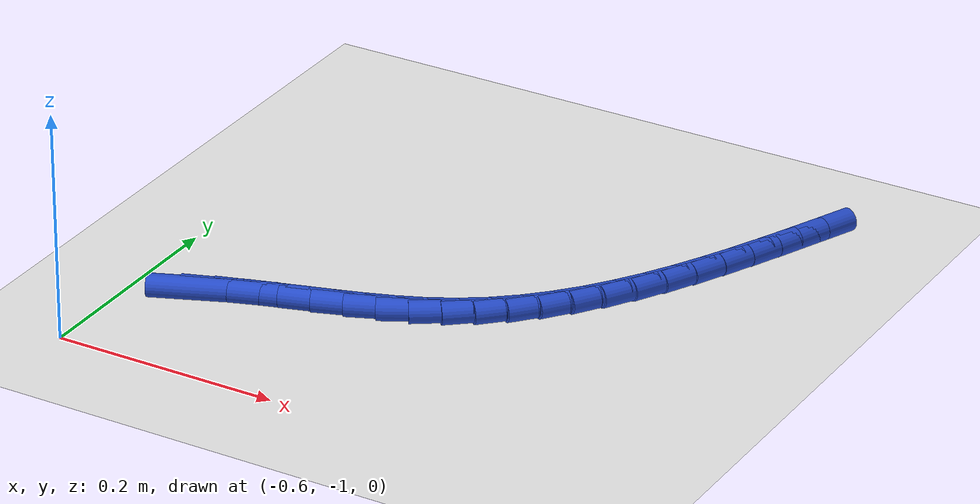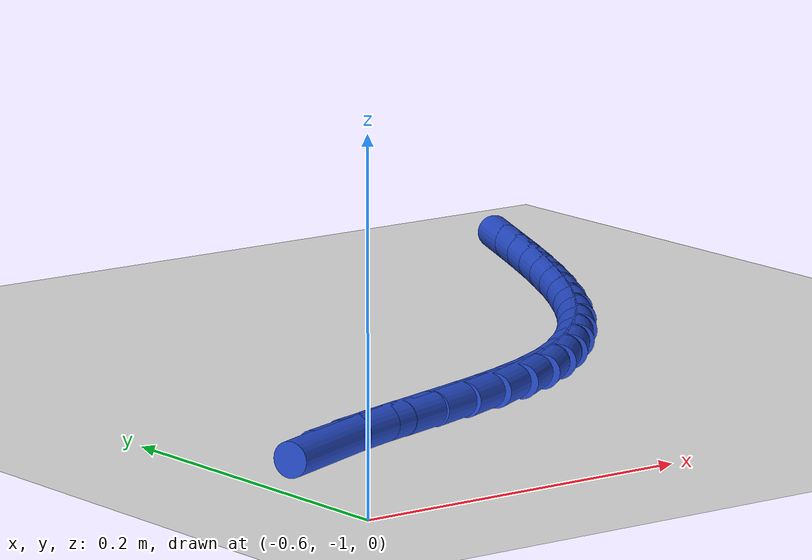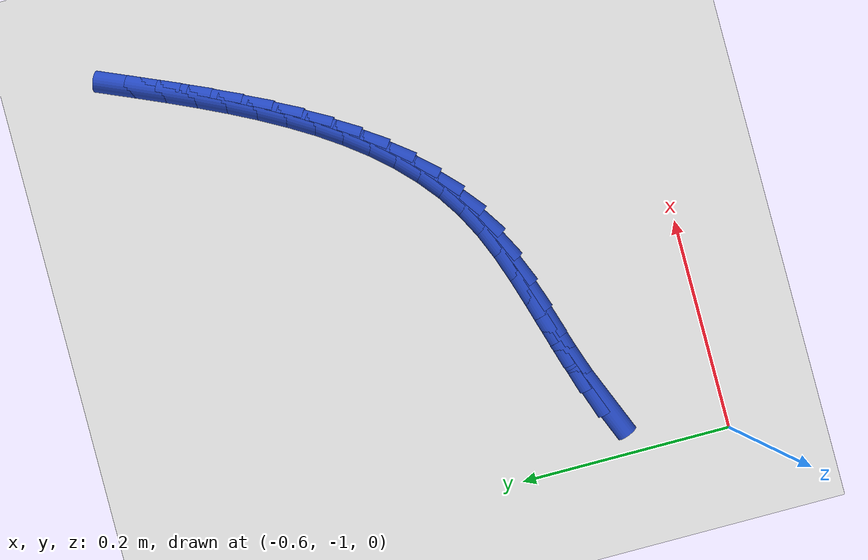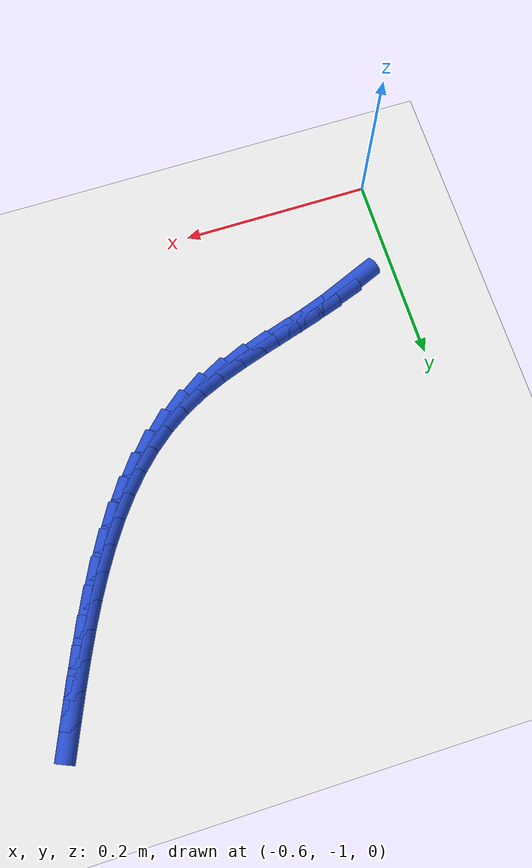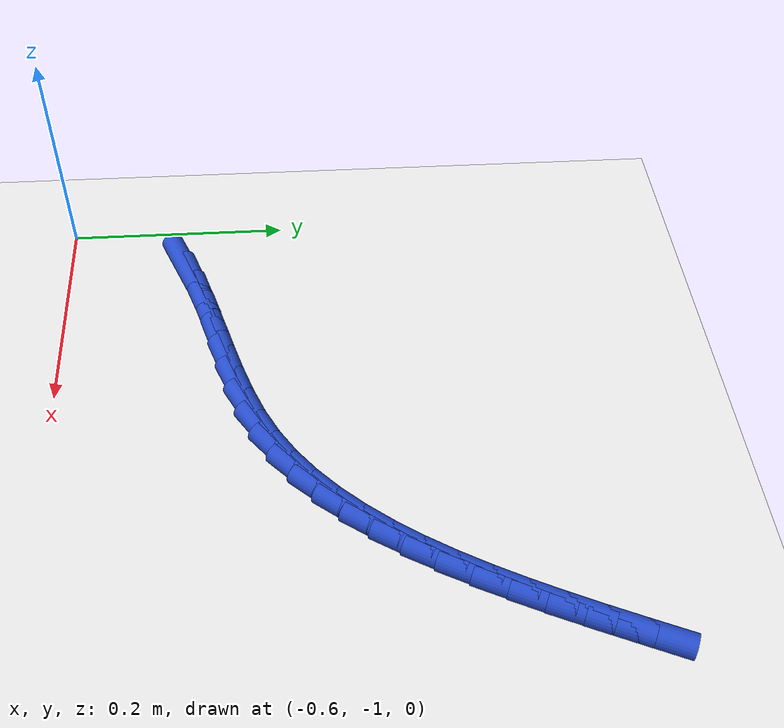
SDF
<sdf version="1.6">
 <world name="default">
  <model name="ground_plane">
   <static>1</static>
   <link name="link">
    <collision name="collision">
     <geometry><plane><normal>0 0 1</normal><size>100 100</size></plane></geometry>
     <surface><friction><ode><mu>100</mu><mu2>50</mu2></ode></friction></surface>
    </collision>
    <visual name="visual">
     <cast_shadows>0</cast_shadows>
     <geometry><plane><normal>0 0 1</normal><size>100 100</size></plane></geometry>
     <material>
      <script><uri>file://media/materials/scripts/gazebo.material</uri><name>Gazebo/WhiteGlow</name></script>
     </material>
    </visual>
   </link>
  </model>
  <model name="line">
   <link name="link_209">
    <pose>-0.5421895039952386 -0.8892947900140765 0.01 0 1.57 0.39271067863178977</pose>
    <collision name="collision">
     <geometry><cylinder><radius>0.01</radius><length>0.08</length></cylinder></geometry>
    </collision>
    <visual name="visual">
     <material>
      <script><name>Gazebo/Blue</name><uri>file://media/materials/scripts/gazebo.material</uri></script>
     </material>
     <geometry><cylinder><radius>0.01</radius><length>0.08</length></cylinder></geometry>
    </visual>
   </link>
   <link name="link_210">
    <pose>-0.5168504344985101 -0.8787986594958387 0.01 0 1.57 0.3353297037357248</pose>
    <collision name="collision">
     <geometry><cylinder><radius>0.01</radius><length>0.08</length></cylinder></geometry>
    </collision>
    <visual name="visual">
     <material>
      <script><name>Gazebo/Blue</name><uri>file://media/materials/scripts/gazebo.material</uri></script>
     </material>
     <geometry><cylinder><radius>0.01</radius><length>0.08</length></cylinder></geometry>
    </visual>
   </link>
   <link name="link_211">
    <pose>-0.49076042862678343 -0.8697065320267503 0.01 0 1.57 0.30157183177391844</pose>
    <collision name="collision">
     <geometry><cylinder><radius>0.01</radius><length>0.08</length></cylinder></geometry>
    </collision>
    <visual name="visual">
     <material>
      <script><name>Gazebo/Blue</name><uri>file://media/materials/scripts/gazebo.material</uri></script>
     </material>
     <geometry><cylinder><radius>0.01</radius><length>0.08</length></cylinder></geometry>
    </visual>
   </link>
   <link name="link_212">
    <pose>-0.46427728870773677 -0.8614687043338972 0.01 0 1.57 0.2906847702138312</pose>
    <collision name="collision">
     <geometry><cylinder><radius>0.01</radius><length>0.08</length></cylinder></geometry>
    </collision>
    <visual name="visual">
     <material>
      <script><name>Gazebo/Blue</name><uri>file://media/materials/scripts/gazebo.material</uri></script>
     </material>
     <geometry><cylinder><radius>0.01</radius><length>0.08</length></cylinder></geometry>
    </visual>
   </link>
   <link name="link_213">
    <pose>-0.4377588170690475 -0.8535354731443643 0.01 0 1.57 0.30260967233285235</pose>
    <collision name="collision">
     <geometry><cylinder><radius>0.01</radius><length>0.08</length></cylinder></geometry>
    </collision>
    <visual name="visual">
     <material>
      <script><name>Gazebo/Blue</name><uri>file://media/materials/scripts/gazebo.material</uri></script>
     </material>
     <geometry><cylinder><radius>0.01</radius><length>0.08</length></cylinder></geometry>
    </visual>
   </link>
   <link name="link_214">
    <pose>-0.4115628160383934 -0.8453571351852368 0.01 0 1.57 0.338162907257233</pose>
    <collision name="collision">
     <geometry><cylinder><radius>0.01</radius><length>0.08</length></cylinder></geometry>
    </collision>
    <visual name="visual">
     <material>
      <script><name>Gazebo/Blue</name><uri>file://media/materials/scripts/gazebo.material</uri></script>
     </material>
     <geometry><cylinder><radius>0.01</radius><length>0.08</length></cylinder></geometry>
    </visual>
   </link>
   <link name="link_215">
    <pose>-0.3860470879434524 -0.8363839871836003 0.01 0 1.57 0.39891385513771366</pose>
    <collision name="collision">
     <geometry><cylinder><radius>0.01</radius><length>0.08</length></cylinder></geometry>
    </collision>
    <visual name="visual">
     <material>
      <script><name>Gazebo/Blue</name><uri>file://media/materials/scripts/gazebo.material</uri></script>
     </material>
     <geometry><cylinder><radius>0.01</radius><length>0.08</length></cylinder></geometry>
    </visual>
   </link>
   <link name="link_216">
    <pose>-0.3615694351119019 -0.8260663258665397 0.01 0 1.57 0.4864085923453194</pose>
    <collision name="collision">
     <geometry><cylinder><radius>0.01</radius><length>0.08</length></cylinder></geometry>
    </collision>
    <visual name="visual">
     <material>
      <script><name>Gazebo/Blue</name><uri>file://media/materials/scripts/gazebo.material</uri></script>
     </material>
     <geometry><cylinder><radius>0.01</radius><length>0.08</length></cylinder></geometry>
    </visual>
   </link>
   <link name="link_217">
    <pose>-0.3384844719476005 -0.8138593719347313 0.01 0 1.57 0.5886975226947238</pose>
    <collision name="collision">
     <geometry><cylinder><radius>0.01</radius><length>0.08</length></cylinder></geometry>
    </collision>
    <visual name="visual">
     <material>
      <script><name>Gazebo/Blue</name><uri>file://media/materials/scripts/gazebo.material</uri></script>
     </material>
     <geometry><cylinder><radius>0.01</radius><length>0.08</length></cylinder></geometry>
    </visual>
   </link>
   <link name="link_218">
    <pose>-0.3169684906887931 -0.7994937772735081 0.01 0 1.57 0.6851763545333474</pose>
    <collision name="collision">
     <geometry><cylinder><radius>0.01</radius><length>0.08</length></cylinder></geometry>
    </collision>
    <visual name="visual">
     <material>
      <script><name>Gazebo/Blue</name><uri>file://media/materials/scripts/gazebo.material</uri></script>
     </material>
     <geometry><cylinder><radius>0.01</radius><length>0.08</length></cylinder></geometry>
    </visual>
   </link>
   <link name="link_219">
    <pose>-0.2969285857119773 -0.7831159888866226 0.01 0 1.57 0.7726567392327328</pose>
    <collision name="collision">
     <geometry><cylinder><radius>0.01</radius><length>0.08</length></cylinder></geometry>
    </collision>
    <visual name="visual">
     <material>
      <script><name>Gazebo/Blue</name><uri>file://media/materials/scripts/gazebo.material</uri></script>
     </material>
     <geometry><cylinder><radius>0.01</radius><length>0.08</length></cylinder></geometry>
    </visual>
   </link>
   <link name="link_220">
    <pose>-0.2782495162950675 -0.76490695191574 0.01 0 1.57 0.850355793954357</pose>
    <collision name="collision">
     <geometry><cylinder><radius>0.01</radius><length>0.08</length></cylinder></geometry>
    </collision>
    <visual name="visual">
     <material>
      <script><name>Gazebo/Blue</name><uri>file://media/materials/scripts/gazebo.material</uri></script>
     </material>
     <geometry><cylinder><radius>0.01</radius><length>0.08</length></cylinder></geometry>
    </visual>
   </link>
   <link name="link_221">
    <pose>-0.2608160417159785 -0.7450476115025246 0.01 0 1.57 0.9181586242562081</pose>
    <collision name="collision">
     <geometry><cylinder><radius>0.01</radius><length>0.08</length></cylinder></geometry>
    </collision>
    <visual name="visual">
     <material>
      <script><name>Gazebo/Blue</name><uri>file://media/materials/scripts/gazebo.material</uri></script>
     </material>
     <geometry><cylinder><radius>0.01</radius><length>0.08</length></cylinder></geometry>
    </visual>
   </link>
   <link name="link_222">
    <pose>-0.24451292125262483 -0.723718912788642 0.01 0 1.57 0.976395208301844</pose>
    <collision name="collision">
     <geometry><cylinder><radius>0.01</radius><length>0.08</length></cylinder></geometry>
    </collision>
    <visual name="visual">
     <material>
      <script><name>Gazebo/Blue</name><uri>file://media/materials/scripts/gazebo.material</uri></script>
     </material>
     <geometry><cylinder><radius>0.01</radius><length>0.08</length></cylinder></geometry>
    </visual>
   </link>
   <link name="link_223">
    <pose>-0.229224914182921 -0.701101800915756 0.01 0 1.57 1.025636488049374</pose>
    <collision name="collision">
     <geometry><cylinder><radius>0.01</radius><length>0.08</length></cylinder></geometry>
    </collision>
    <visual name="visual">
     <material>
      <script><name>Gazebo/Blue</name><uri>file://media/materials/scripts/gazebo.material</uri></script>
     </material>
     <geometry><cylinder><radius>0.01</radius><length>0.08</length></cylinder></geometry>
    </visual>
   </link>
   <link name="link_224">
    <pose>-0.21483677978478175 -0.6773772210255324 0.01 0 1.57 1.0665403671013776</pose>
    <collision name="collision">
     <geometry><cylinder><radius>0.01</radius><length>0.08</length></cylinder></geometry>
    </collision>
    <visual name="visual">
     <material>
      <script><name>Gazebo/Blue</name><uri>file://media/materials/scripts/gazebo.material</uri></script>
     </material>
     <geometry><cylinder><radius>0.01</radius><length>0.08</length></cylinder></geometry>
    </visual>
   </link>
   <link name="link_225">
    <pose>-0.20123327733612145 -0.6527261182596357 0.01 0 1.57 1.0997495017139047</pose>
    <collision name="collision">
     <geometry><cylinder><radius>0.01</radius><length>0.08</length></cylinder></geometry>
    </collision>
    <visual name="visual">
     <material>
      <script><name>Gazebo/Blue</name><uri>file://media/materials/scripts/gazebo.material</uri></script>
     </material>
     <geometry><cylinder><radius>0.01</radius><length>0.08</length></cylinder></geometry>
    </visual>
   </link>
   <link name="link_226">
    <pose>-0.1882991661148549 -0.6273294377597305 0.01 0 1.57 1.125829955324928</pose>
    <collision name="collision">
     <geometry><cylinder><radius>0.01</radius><length>0.08</length></cylinder></geometry>
    </collision>
    <visual name="visual">
     <material>
      <script><name>Gazebo/Blue</name><uri>file://media/materials/scripts/gazebo.material</uri></script>
     </material>
     <geometry><cylinder><radius>0.01</radius><length>0.08</length></cylinder></geometry>
    </visual>
   </link>
   <link name="link_227">
    <pose>-0.1759192053988966 -0.601368124667482 0.01 0 1.57 1.1452373373416505</pose>
    <collision name="collision">
     <geometry><cylinder><radius>0.01</radius><length>0.08</length></cylinder></geometry>
    </collision>
    <visual name="visual">
     <material>
      <script><name>Gazebo/Blue</name><uri>file://media/materials/scripts/gazebo.material</uri></script>
     </material>
     <geometry><cylinder><radius>0.01</radius><length>0.08</length></cylinder></geometry>
    </visual>
   </link>
   <link name="link_228">
    <pose>-0.16397815446616115 -0.5750231241245553 0.01 0 1.57 1.158299121247985</pose>
    <collision name="collision">
     <geometry><cylinder><radius>0.01</radius><length>0.08</length></cylinder></geometry>
    </collision>
    <visual name="visual">
     <material>
      <script><name>Gazebo/Blue</name><uri>file://media/materials/scripts/gazebo.material</uri></script>
     </material>
     <geometry><cylinder><radius>0.01</radius><length>0.08</length></cylinder></geometry>
    </visual>
   </link>
   <link name="link_229">
    <pose>-0.1523607725945631 -0.5484753812726144 0.01 0 1.57 1.1652049714717208</pose>
    <collision name="collision">
     <geometry><cylinder><radius>0.01</radius><length>0.08</length></cylinder></geometry>
    </collision>
    <visual name="visual">
     <material>
      <script><name>Gazebo/Blue</name><uri>file://media/materials/scripts/gazebo.material</uri></script>
     </material>
     <geometry><cylinder><radius>0.01</radius><length>0.08</length></cylinder></geometry>
    </visual>
   </link>
  </model>
 </world>
</sdf>
